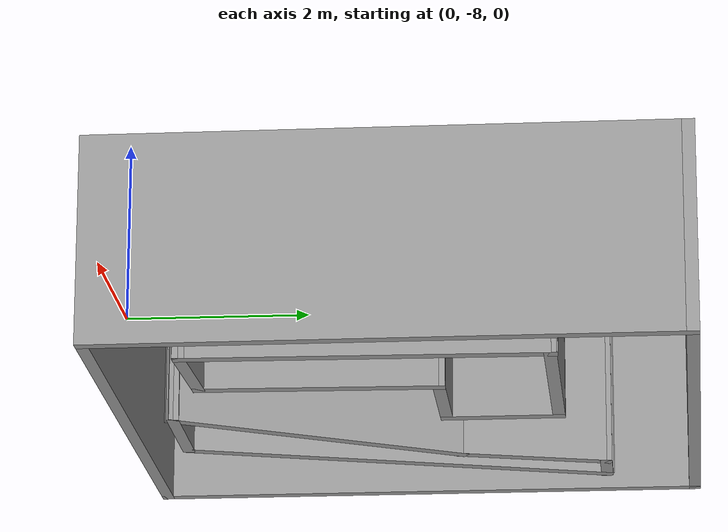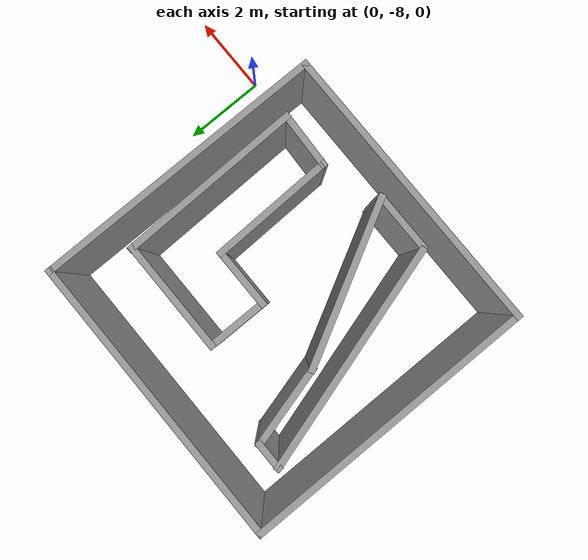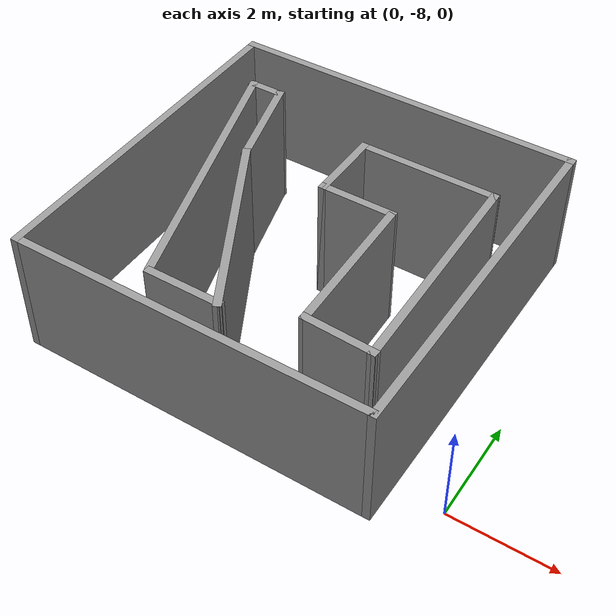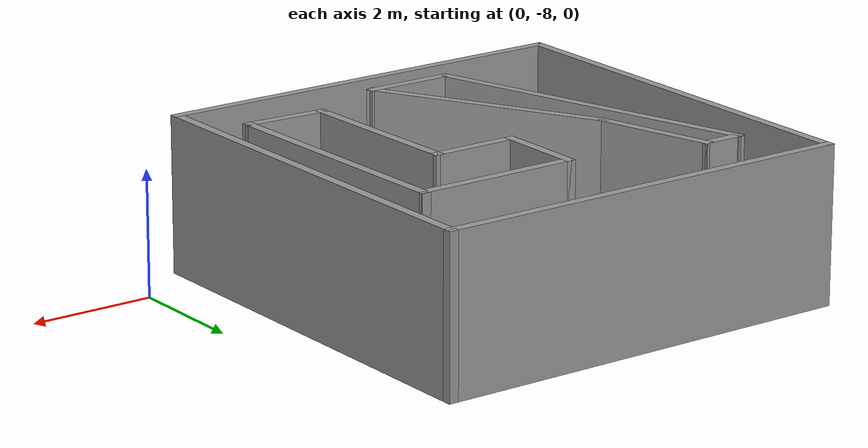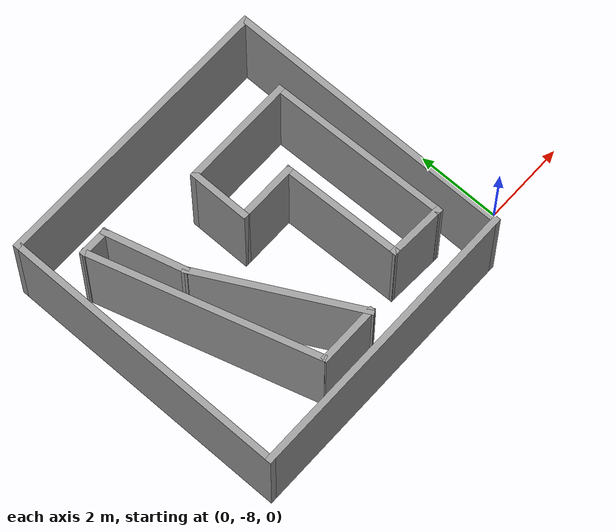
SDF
<?xml version='1.0'?>
<sdf version='1.7'>
  <model name='like_maze_map2'>
    <pose>-3.95762 -4.37577 0 0 -0 0</pose>
    <link name='Wall_56'>
      <collision name='Wall_56_Collision'>
        <geometry>
          <box>
            <size>7 0.15 2.5</size>
          </box>
        </geometry>
        <pose>0 0 1.25 0 -0 0</pose>
      </collision>
      <visual name='Wall_56_Visual'>
        <pose>0 0 1.25 0 -0 0</pose>
        <geometry>
          <box>
            <size>7 0.15 2.5</size>
          </box>
        </geometry>
        <material>
          <script>
            <uri>file://media/materials/scripts/gazebo.material</uri>
            <name>Gazebo/Grey</name>
          </script>
          <ambient>1 1 1 1</ambient>
        </material>
        <meta>
          <layer>0</layer>
        </meta>
      </visual>
      <pose>-3.88262 -0.875772 0 0 -0 -1.5708</pose>
    </link>
    <link name='Wall_57'>
      <collision name='Wall_57_Collision'>
        <geometry>
          <box>
            <size>7 0.15 2.5</size>
          </box>
        </geometry>
        <pose>0 0 1.25 0 -0 0</pose>
      </collision>
      <visual name='Wall_57_Visual'>
        <pose>0 0 1.25 0 -0 0</pose>
        <geometry>
          <box>
            <size>7 0.15 2.5</size>
          </box>
        </geometry>
        <material>
          <script>
            <uri>file://media/materials/scripts/gazebo.material</uri>
            <name>Gazebo/Grey</name>
          </script>
          <ambient>1 1 1 1</ambient>
        </material>
        <meta>
          <layer>0</layer>
        </meta>
      </visual>
      <pose>-0.457622 -4.30077 0 0 -0 0</pose>
    </link>
    <link name='Wall_58'>
      <collision name='Wall_58_Collision'>
        <geometry>
          <box>
            <size>7 0.15 2.5</size>
          </box>
        </geometry>
        <pose>0 0 1.25 0 -0 0</pose>
      </collision>
      <visual name='Wall_58_Visual'>
        <pose>0 0 1.25 0 -0 0</pose>
        <geometry>
          <box>
            <size>7 0.15 2.5</size>
          </box>
        </geometry>
        <material>
          <script>
            <uri>file://media/materials/scripts/gazebo.material</uri>
            <name>Gazebo/Grey</name>
          </script>
          <ambient>1 1 1 1</ambient>
        </material>
        <meta>
          <layer>0</layer>
        </meta>
      </visual>
      <pose>2.96738 -0.875772 0 0 -0 1.5708</pose>
    </link>
    <link name='Wall_59'>
      <collision name='Wall_59_Collision'>
        <geometry>
          <box>
            <size>7 0.15 2.5</size>
          </box>
        </geometry>
        <pose>0 0 1.25 0 -0 0</pose>
      </collision>
      <visual name='Wall_59_Visual'>
        <pose>0 0 1.25 0 -0 0</pose>
        <geometry>
          <box>
            <size>7 0.15 2.5</size>
          </box>
        </geometry>
        <material>
          <script>
            <uri>file://media/materials/scripts/gazebo.material</uri>
            <name>Gazebo/Grey</name>
          </script>
          <ambient>1 1 1 1</ambient>
        </material>
        <meta>
          <layer>0</layer>
        </meta>
      </visual>
      <pose>-0.457622 2.54923 0 0 -0 3.14159</pose>
    </link>
    <link name='Wall_72'>
      <collision name='Wall_72_Collision'>
        <geometry>
          <box>
            <size>5.47263 0.15 2.5</size>
          </box>
        </geometry>
        <pose>0 0 1.25 0 -0 0</pose>
      </collision>
      <visual name='Wall_72_Visual'>
        <pose>0 0 1.25 0 -0 0</pose>
        <geometry>
          <box>
            <size>5.47263 0.15 2.5</size>
          </box>
        </geometry>
        <material>
          <script>
            <uri>file://media/materials/scripts/gazebo.material</uri>
            <name>Gazebo/Grey</name>
          </script>
          <ambient>1 1 1 1</ambient>
        </material>
        <meta>
          <layer>0</layer>
        </meta>
      </visual>
      <pose>-2.35388 -1.11085 0 0 -0 1.85749</pose>
    </link>
    <link name='Wall_78'>
      <collision name='Wall_78_Collision'>
        <geometry>
          <box>
            <size>0.75 0.15 2.5</size>
          </box>
        </geometry>
        <pose>0 0 1.25 0 -0 0</pose>
      </collision>
      <visual name='Wall_78_Visual'>
        <pose>0 0 1.25 0 -0 0</pose>
        <geometry>
          <box>
            <size>0.75 0.15 2.5</size>
          </box>
        </geometry>
        <material>
          <script>
            <uri>file://media/materials/scripts/gazebo.material</uri>
            <name>Gazebo/Grey</name>
          </script>
          <ambient>1 1 1 1</ambient>
        </material>
        <meta>
          <layer>0</layer>
        </meta>
      </visual>
      <pose>-2.80646 1.44184 0 0 -0 0</pose>
    </link>
    <link name='Wall_79'>
      <collision name='Wall_79_Collision'>
        <geometry>
          <box>
            <size>2 0.15 2.5</size>
          </box>
        </geometry>
        <pose>0 0 1.25 0 -0 0</pose>
      </collision>
      <visual name='Wall_79_Visual'>
        <pose>0 0 1.25 0 -0 0</pose>
        <geometry>
          <box>
            <size>2 0.15 2.5</size>
          </box>
        </geometry>
        <material>
          <script>
            <uri>file://media/materials/scripts/gazebo.material</uri>
            <name>Gazebo/Grey</name>
          </script>
          <ambient>1 1 1 1</ambient>
        </material>
        <meta>
          <layer>0</layer>
        </meta>
      </visual>
      <pose>-2.26705 0.548358 0 0 -0 -1.309</pose>
    </link>
    <link name='Wall_80'>
      <collision name='Wall_80_Collision'>
        <geometry>
          <box>
            <size>3.98542 0.15 2.5</size>
          </box>
        </geometry>
        <pose>0 0 1.25 0 -0 0</pose>
      </collision>
      <visual name='Wall_80_Visual'>
        <pose>0 0 1.25 0 -0 0</pose>
        <geometry>
          <box>
            <size>3.98542 0.15 2.5</size>
          </box>
        </geometry>
        <material>
          <script>
            <uri>file://media/materials/scripts/gazebo.material</uri>
            <name>Gazebo/Grey</name>
          </script>
          <ambient>1 1 1 1</ambient>
        </material>
        <meta>
          <layer>0</layer>
        </meta>
      </visual>
      <pose>-1.12192 -2.03547 0 0 -0 -1.07891</pose>
    </link>
    <link name='Wall_81'>
      <collision name='Wall_81_Collision'>
        <geometry>
          <box>
            <size>1.5 0.15 2.5</size>
          </box>
        </geometry>
        <pose>0 0 1.25 0 -0 0</pose>
      </collision>
      <visual name='Wall_81_Visual'>
        <pose>0 0 1.25 0 -0 0</pose>
        <geometry>
          <box>
            <size>1.5 0.15 2.5</size>
          </box>
        </geometry>
        <material>
          <script>
            <uri>file://media/materials/scripts/gazebo.material</uri>
            <name>Gazebo/Grey</name>
          </script>
          <ambient>1 1 1 1</ambient>
        </material>
        <meta>
          <layer>0</layer>
        </meta>
      </visual>
      <pose>-0.891207 -3.71439 0 0 -0 3.14159</pose>
    </link>
    <link name='Wall_83'>
      <collision name='Wall_83_Collision'>
        <geometry>
          <box>
            <size>2.75 0.15 2.5</size>
          </box>
        </geometry>
        <pose>0 0 1.25 0 -0 0</pose>
      </collision>
      <visual name='Wall_83_Visual'>
        <pose>0 0 1.25 0 -0 0</pose>
        <geometry>
          <box>
            <size>2.75 0.15 2.5</size>
          </box>
        </geometry>
        <material>
          <script>
            <uri>file://media/materials/scripts/gazebo.material</uri>
            <name>Gazebo/Grey</name>
          </script>
          <ambient>1 1 1 1</ambient>
        </material>
        <meta>
          <layer>0</layer>
        </meta>
      </visual>
      <pose>0.959543 0.935839 0 0 -0 0</pose>
    </link>
    <link name='Wall_84'>
      <collision name='Wall_84_Collision'>
        <geometry>
          <box>
            <size>4.38423 0.15 2.5</size>
          </box>
        </geometry>
        <pose>0 0 1.25 0 -0 0</pose>
      </collision>
      <visual name='Wall_84_Visual'>
        <pose>0 0 1.25 0 -0 0</pose>
        <geometry>
          <box>
            <size>4.38423 0.15 2.5</size>
          </box>
        </geometry>
        <material>
          <script>
            <uri>file://media/materials/scripts/gazebo.material</uri>
            <name>Gazebo/Grey</name>
          </script>
          <ambient>1 1 1 1</ambient>
        </material>
        <meta>
          <layer>0</layer>
        </meta>
      </visual>
      <pose>2.30646 -1.16925 0 0 -0 -1.54863</pose>
    </link>
    <link name='Wall_94'>
      <collision name='Wall_94_Collision'>
        <geometry>
          <box>
            <size>1.5 0.15 2.5</size>
          </box>
        </geometry>
        <pose>0 0 1.25 0 -0 0</pose>
      </collision>
      <visual name='Wall_94_Visual'>
        <pose>0 0 1.25 0 -0 0</pose>
        <geometry>
          <box>
            <size>1.5 0.15 2.5</size>
          </box>
        </geometry>
        <material>
          <script>
            <uri>file://media/materials/scripts/gazebo.material</uri>
            <name>Gazebo/Grey</name>
          </script>
          <ambient>1 1 1 1</ambient>
        </material>
        <meta>
          <layer>0</layer>
        </meta>
      </visual>
      <pose>-0.340457 0.260839 0 0 -0 -1.5708</pose>
    </link>
    <link name='Wall_95'>
      <collision name='Wall_95_Collision'>
        <geometry>
          <box>
            <size>1.5 0.15 2.5</size>
          </box>
        </geometry>
        <pose>0 0 1.25 0 -0 0</pose>
      </collision>
      <visual name='Wall_95_Visual'>
        <pose>0 0 1.25 0 -0 0</pose>
        <geometry>
          <box>
            <size>1.5 0.15 2.5</size>
          </box>
        </geometry>
        <material>
          <script>
            <uri>file://media/materials/scripts/gazebo.material</uri>
            <name>Gazebo/Grey</name>
          </script>
          <ambient>1 1 1 1</ambient>
        </material>
        <meta>
          <layer>0</layer>
        </meta>
      </visual>
      <pose>0.334543 -0.414161 0 0 -0 0</pose>
    </link>
    <link name='Wall_97'>
      <collision name='Wall_97_Collision'>
        <geometry>
          <box>
            <size>2.96445 0.15 2.5</size>
          </box>
        </geometry>
        <pose>0 0 1.25 0 -0 0</pose>
      </collision>
      <visual name='Wall_97_Visual'>
        <pose>0 0 1.25 0 -0 0</pose>
        <geometry>
          <box>
            <size>2.96445 0.15 2.5</size>
          </box>
        </geometry>
        <material>
          <script>
            <uri>file://media/materials/scripts/gazebo.material</uri>
            <name>Gazebo/Grey</name>
          </script>
          <ambient>1 1 1 1</ambient>
        </material>
        <meta>
          <layer>0</layer>
        </meta>
      </visual>
      <pose>1.04973 -1.82081 0 0 -0 -1.54224</pose>
    </link>
    <link name='Wall_99'>
      <collision name='Wall_99_Collision'>
        <geometry>
          <box>
            <size>1.41482 0.15 2.5</size>
          </box>
        </geometry>
        <pose>0 0 1.25 0 -0 0</pose>
      </collision>
      <visual name='Wall_99_Visual'>
        <pose>0 0 1.25 0 -0 0</pose>
        <geometry>
          <box>
            <size>1.41482 0.15 2.5</size>
          </box>
        </geometry>
        <material>
          <script>
            <uri>file://media/materials/scripts/gazebo.material</uri>
            <name>Gazebo/Grey</name>
          </script>
          <ambient>1 1 1 1</ambient>
        </material>
        <meta>
          <layer>0</layer>
        </meta>
      </visual>
      <pose>1.72165 -3.25665 0 0 -0 -0.046177</pose>
    </link>
    <static>1</static>
  </model>
</sdf>
